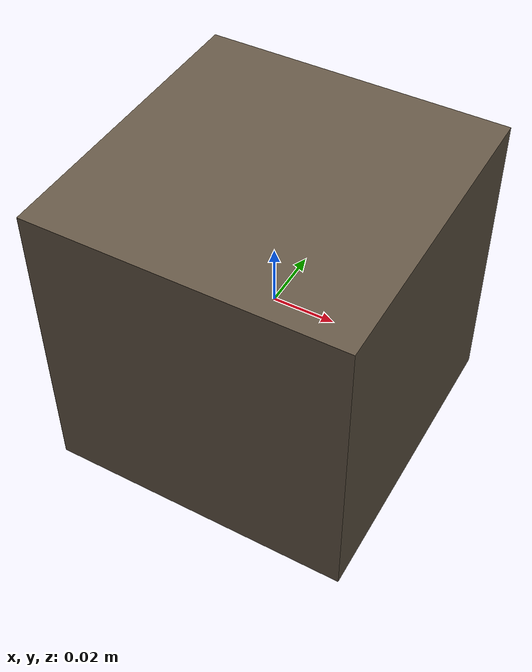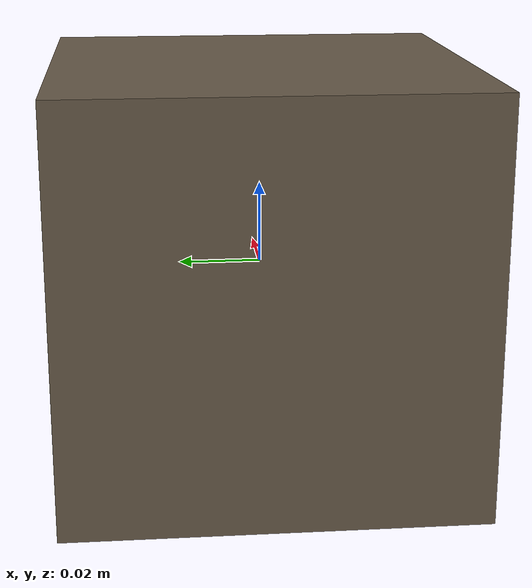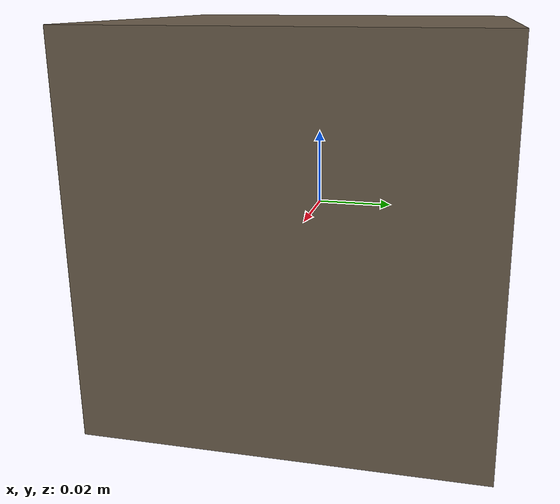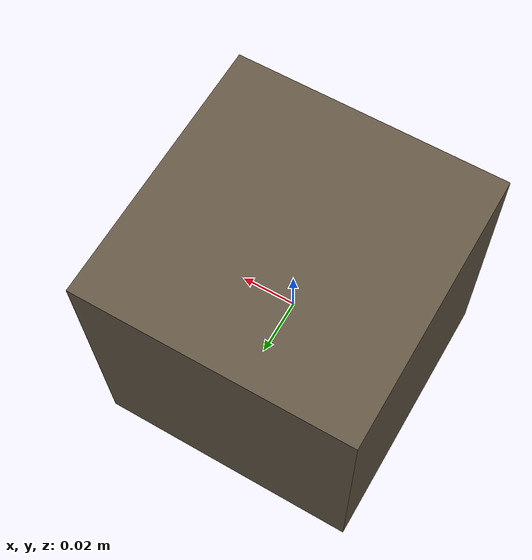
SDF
<?xml version='1.0' encoding='utf-8'?>
<sdf version='1.10'>
<model name='box'>
  <pose>0 0 0 0 0 0</pose>
  <link name='box_link'>
    <collision name='box_collision'>
      <geometry>
        <box>
          <size>0.1 0.1 0.1</size>
        </box>
      </geometry>
      <surface>
        <friction>
          <ode/>
        </friction>
        <bounce/>
        <contact/>
      </surface>
    </collision>
    <visual name='visual'>
      <geometry>
        <box>
          <size>0.099 0.1 0.1</size>
        </box>
      </geometry>
      <material>
         <ambient>0.388 0.337 0.271 1.0</ambient>
         <diffuse>0.388 0.337 0.271 1.0</diffuse>
         <specular>1 1 1 1</specular>
      </material>
    </visual>
    <pose>0 0 0 0 0 0</pose>
    <enable_wind>false</enable_wind>
  </link>
  <static>true</static>
  <self_collide>false</self_collide>
</model>
</sdf>
